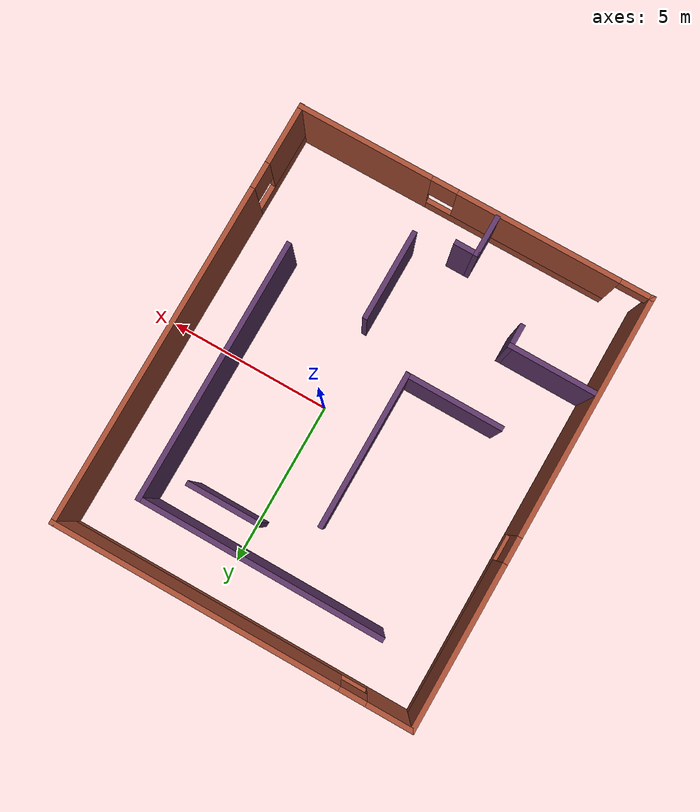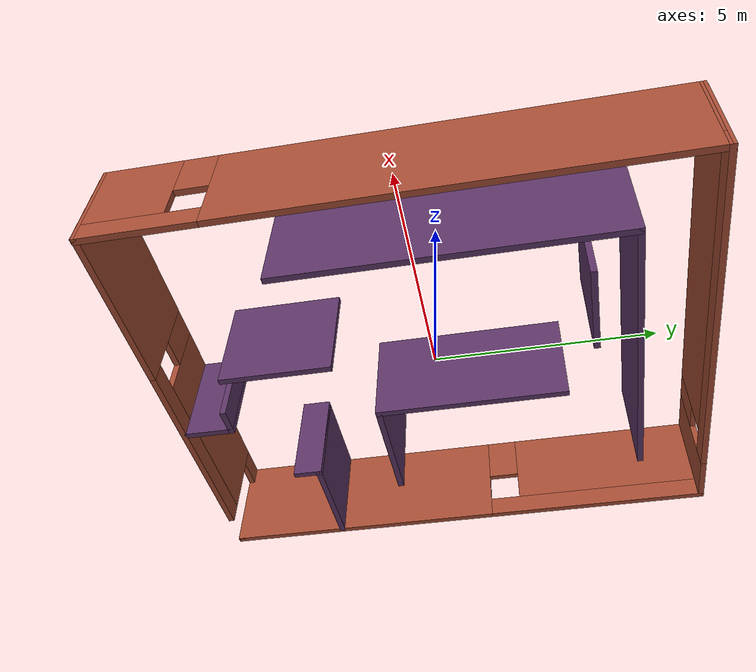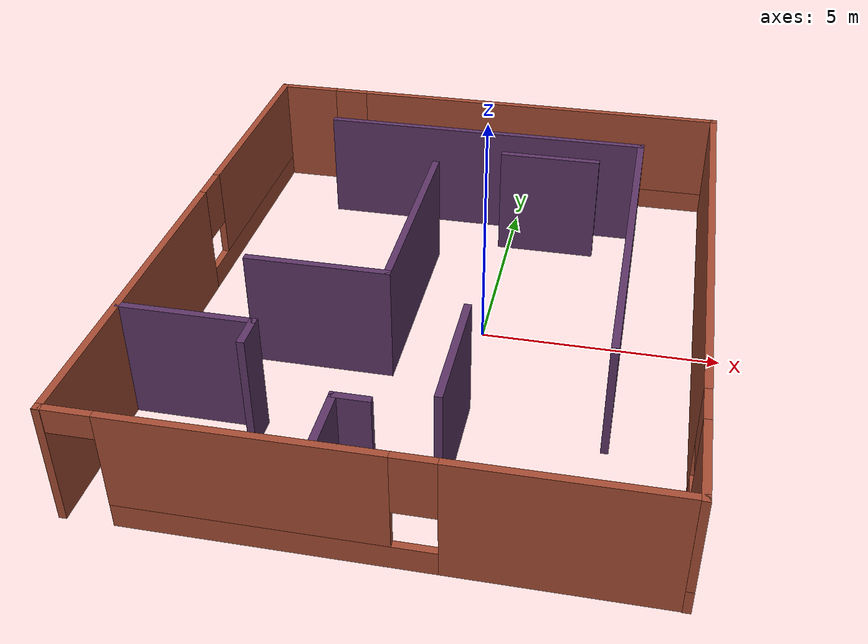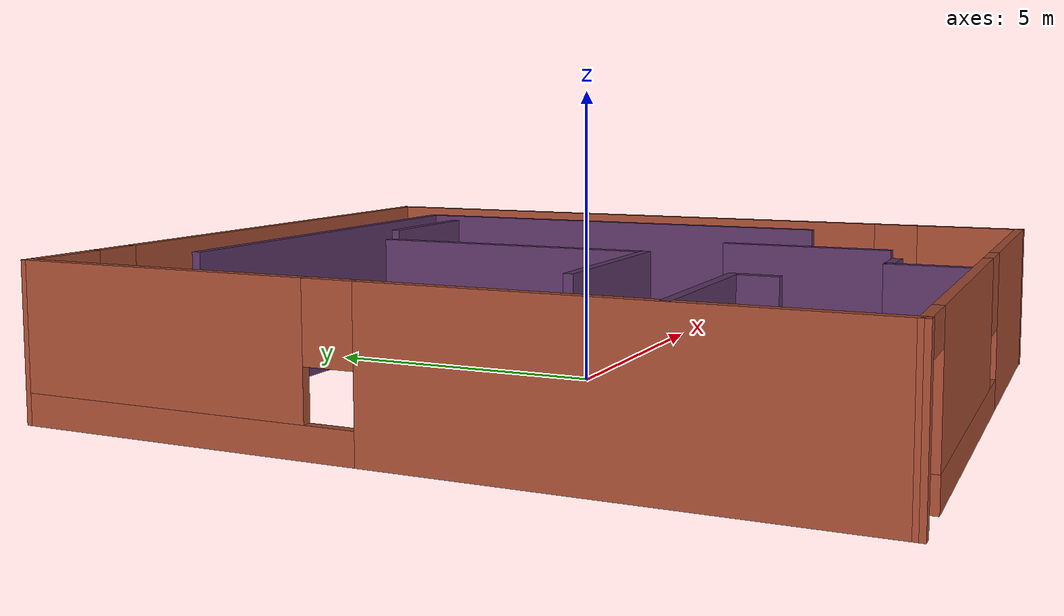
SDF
<?xml version='1.0'?>
<sdf version='1.7'>
  <model name='maze'>
    <pose>-0.910264 -0.210182 0 0 -0 0</pose>
    <link name='Wall_1'>
      <pose>-0.015736 -6.50732 0 0 -0 -3.13597</pose>
      <visual name='Wall_1_Visual_0'>
        <pose>-3.41573 0 1.25 0 -0 0</pose>
        <geometry>
          <box>
            <size>4.16472 0.15 2.5</size>
          </box>
        </geometry>
        <material>
          <script>
            <uri>file://media/materials/scripts/gazebo.material</uri>
            <name>Gazebo/Bricks</name>
          </script>
          <ambient>1 1 1 1</ambient>
        </material>
        <meta>
          <layer>0</layer>
        </meta>
      </visual>
      <collision name='Wall_1_Collision_0'>
        <geometry>
          <box>
            <size>4.16472 0.15 2.5</size>
          </box>
        </geometry>
        <pose>-3.41573 0 1.25 0 -0 0</pose>
      </collision>
      <visual name='Wall_1_Visual_1'>
        <pose>5.42902 0 1.25 0 -0 0</pose>
        <geometry>
          <box>
            <size>0.138125 0.15 2.5</size>
          </box>
        </geometry>
        <material>
          <script>
            <uri>file://media/materials/scripts/gazebo.material</uri>
            <name>Gazebo/Bricks</name>
          </script>
          <ambient>1 1 1 1</ambient>
        </material>
        <meta>
          <layer>0</layer>
        </meta>
      </visual>
      <collision name='Wall_1_Collision_1'>
        <geometry>
          <box>
            <size>0.138125 0.15 2.5</size>
          </box>
        </geometry>
        <pose>5.42902 0 1.25 0 -0 0</pose>
      </collision>
      <visual name='Wall_1_Visual_2'>
        <pose>1.5633 0 0.25 0 -0 0</pose>
        <geometry>
          <box>
            <size>5.79333 0.15 0.5</size>
          </box>
        </geometry>
        <material>
          <script>
            <uri>file://media/materials/scripts/gazebo.material</uri>
            <name>Gazebo/Bricks</name>
          </script>
          <ambient>1 1 1 1</ambient>
        </material>
        <meta>
          <layer>0</layer>
        </meta>
      </visual>
      <collision name='Wall_1_Collision_2'>
        <geometry>
          <box>
            <size>5.79333 0.15 0.5</size>
          </box>
        </geometry>
        <pose>1.5633 0 0.25 0 -0 0</pose>
      </collision>
      <visual name='Wall_1_Visual_3'>
        <pose>1.9633 0 1.5 0 -0 0</pose>
        <geometry>
          <box>
            <size>4.99333 0.15 2</size>
          </box>
        </geometry>
        <material>
          <script>
            <uri>file://media/materials/scripts/gazebo.material</uri>
            <name>Gazebo/Bricks</name>
          </script>
          <ambient>1 1 1 1</ambient>
        </material>
        <meta>
          <layer>0</layer>
        </meta>
      </visual>
      <collision name='Wall_1_Collision_3'>
        <geometry>
          <box>
            <size>4.99333 0.15 2</size>
          </box>
        </geometry>
        <pose>1.9633 0 1.5 0 -0 0</pose>
      </collision>
      <visual name='Wall_1_Visual_4'>
        <pose>-0.933367 0 1.9 0 -0 0</pose>
        <geometry>
          <box>
            <size>0.8 0.15 1.2</size>
          </box>
        </geometry>
        <material>
          <script>
            <uri>file://media/materials/scripts/gazebo.material</uri>
            <name>Gazebo/Bricks</name>
          </script>
          <ambient>1 1 1 1</ambient>
        </material>
        <meta>
          <layer>0</layer>
        </meta>
      </visual>
      <collision name='Wall_1_Collision_4'>
        <geometry>
          <box>
            <size>0.8 0.15 1.2</size>
          </box>
        </geometry>
        <pose>-0.933367 0 1.9 0 -0 0</pose>
      </collision>
      <visual name='Wall_1_Visual_5'>
        <pose>4.90996 0 2.25 0 -0 0</pose>
        <geometry>
          <box>
            <size>0.9 0.15 0.5</size>
          </box>
        </geometry>
        <material>
          <script>
            <uri>file://media/materials/scripts/gazebo.material</uri>
            <name>Gazebo/Bricks</name>
          </script>
          <ambient>1 1 1 1</ambient>
        </material>
        <meta>
          <layer>0</layer>
        </meta>
      </visual>
      <collision name='Wall_1_Collision_5'>
        <geometry>
          <box>
            <size>0.9 0.15 0.5</size>
          </box>
        </geometry>
        <pose>4.90996 0 2.25 0 -0 0</pose>
      </collision>
    </link>
    <link name='Wall_18'>
      <collision name='Wall_18_Collision'>
        <geometry>
          <box>
            <size>2.75 0.15 2.5</size>
          </box>
        </geometry>
        <pose>0 0 1.25 0 -0 0</pose>
      </collision>
      <visual name='Wall_18_Visual'>
        <pose>0 0 1.25 0 -0 0</pose>
        <geometry>
          <box>
            <size>2.75 0.15 2.5</size>
          </box>
        </geometry>
        <material>
          <script>
            <uri>file://media/materials/scripts/gazebo.material</uri>
            <name>Gazebo/Grey</name>
          </script>
          <ambient>0.360784 0.207843 0.4 1</ambient>
        </material>
        <meta>
          <layer>0</layer>
        </meta>
      </visual>
      <pose>-4.06423 -3.53337 0 0 -0 0</pose>
    </link>
    <link name='Wall_19'>
      <collision name='Wall_19_Collision'>
        <geometry>
          <box>
            <size>0.75 0.15 2.5</size>
          </box>
        </geometry>
        <pose>0 0 1.25 0 -0 0</pose>
      </collision>
      <visual name='Wall_19_Visual'>
        <pose>0 0 1.25 0 -0 0</pose>
        <geometry>
          <box>
            <size>0.75 0.15 2.5</size>
          </box>
        </geometry>
        <material>
          <script>
            <uri>file://media/materials/scripts/gazebo.material</uri>
            <name>Gazebo/Grey</name>
          </script>
          <ambient>0.360784 0.207843 0.4 1</ambient>
        </material>
        <meta>
          <layer>0</layer>
        </meta>
      </visual>
      <pose>-2.76423 -3.83337 0 0 -0 -1.5708</pose>
    </link>
    <link name='Wall_2'>
      <pose>-5.42275 -0.030618 0 0 -0 1.56834</pose>
      <visual name='Wall_2_Visual_0'>
        <pose>-2.88442 0 1.25 0 -0 0</pose>
        <geometry>
          <box>
            <size>7.41559 0.15 2.5</size>
          </box>
        </geometry>
        <material>
          <script>
            <uri>file://media/materials/scripts/gazebo.material</uri>
            <name>Gazebo/Bricks</name>
          </script>
          <ambient>1 1 1 1</ambient>
        </material>
        <meta>
          <layer>0</layer>
        </meta>
      </visual>
      <collision name='Wall_2_Collision_0'>
        <geometry>
          <box>
            <size>7.41559 0.15 2.5</size>
          </box>
        </geometry>
        <pose>-2.88442 0 1.25 0 -0 0</pose>
      </collision>
      <visual name='Wall_2_Visual_1'>
        <pose>3.7078 0 0.25 0 -0 0</pose>
        <geometry>
          <box>
            <size>5.76885 0.15 0.5</size>
          </box>
        </geometry>
        <material>
          <script>
            <uri>file://media/materials/scripts/gazebo.material</uri>
            <name>Gazebo/Bricks</name>
          </script>
          <ambient>1 1 1 1</ambient>
        </material>
        <meta>
          <layer>0</layer>
        </meta>
      </visual>
      <collision name='Wall_2_Collision_1'>
        <geometry>
          <box>
            <size>5.76885 0.15 0.5</size>
          </box>
        </geometry>
        <pose>3.7078 0 0.25 0 -0 0</pose>
      </collision>
      <visual name='Wall_2_Visual_2'>
        <pose>4.1078 0 1.5 0 -0 0</pose>
        <geometry>
          <box>
            <size>4.96885 0.15 2</size>
          </box>
        </geometry>
        <material>
          <script>
            <uri>file://media/materials/scripts/gazebo.material</uri>
            <name>Gazebo/Bricks</name>
          </script>
          <ambient>1 1 1 1</ambient>
        </material>
        <meta>
          <layer>0</layer>
        </meta>
      </visual>
      <collision name='Wall_2_Collision_2'>
        <geometry>
          <box>
            <size>4.96885 0.15 2</size>
          </box>
        </geometry>
        <pose>4.1078 0 1.5 0 -0 0</pose>
      </collision>
      <visual name='Wall_2_Visual_3'>
        <pose>1.22337 0 1.9 0 -0 0</pose>
        <geometry>
          <box>
            <size>0.8 0.15 1.2</size>
          </box>
        </geometry>
        <material>
          <script>
            <uri>file://media/materials/scripts/gazebo.material</uri>
            <name>Gazebo/Bricks</name>
          </script>
          <ambient>1 1 1 1</ambient>
        </material>
        <meta>
          <layer>0</layer>
        </meta>
      </visual>
      <collision name='Wall_2_Collision_3'>
        <geometry>
          <box>
            <size>0.8 0.15 1.2</size>
          </box>
        </geometry>
        <pose>1.22337 0 1.9 0 -0 0</pose>
      </collision>
    </link>
    <link name='Wall_21'>
      <collision name='Wall_21_Collision'>
        <geometry>
          <box>
            <size>1.28004 0.15 2.5</size>
          </box>
        </geometry>
        <pose>0 0 1.25 0 -0 0</pose>
      </collision>
      <visual name='Wall_21_Visual'>
        <pose>0 0 1.25 0 -0 0</pose>
        <geometry>
          <box>
            <size>1.28004 0.15 2.5</size>
          </box>
        </geometry>
        <material>
          <script>
            <uri>file://media/materials/scripts/gazebo.material</uri>
            <name>Gazebo/Grey</name>
          </script>
          <ambient>0.360784 0.207843 0.4 1</ambient>
        </material>
        <meta>
          <layer>0</layer>
        </meta>
      </visual>
      <pose>-0.745693 -5.83385 0 0 -0 1.5708</pose>
    </link>
    <link name='Wall_25'>
      <collision name='Wall_25_Collision'>
        <geometry>
          <box>
            <size>7.5 0.15 2.5</size>
          </box>
        </geometry>
        <pose>0 0 1.25 0 -0 0</pose>
      </collision>
      <visual name='Wall_25_Visual'>
        <pose>0 0 1.25 0 -0 0</pose>
        <geometry>
          <box>
            <size>7.5 0.15 2.5</size>
          </box>
        </geometry>
        <material>
          <script>
            <uri>file://media/materials/scripts/gazebo.material</uri>
            <name>Gazebo/Grey</name>
          </script>
          <ambient>0.360784 0.207843 0.4 1</ambient>
        </material>
        <meta>
          <layer>0</layer>
        </meta>
      </visual>
      <pose>0.115596 4.87894 0 0 -0 0</pose>
    </link>
    <link name='Wall_26'>
      <collision name='Wall_26_Collision'>
        <geometry>
          <box>
            <size>8 0.15 2.5</size>
          </box>
        </geometry>
        <pose>0 0 1.25 0 -0 0</pose>
      </collision>
      <visual name='Wall_26_Visual'>
        <pose>0 0 1.25 0 -0 0</pose>
        <geometry>
          <box>
            <size>8 0.15 2.5</size>
          </box>
        </geometry>
        <material>
          <script>
            <uri>file://media/materials/scripts/gazebo.material</uri>
            <name>Gazebo/Grey</name>
          </script>
          <ambient>0.360784 0.207843 0.4 1</ambient>
        </material>
        <meta>
          <layer>0</layer>
        </meta>
      </visual>
      <pose>3.7906 0.95394 0 0 -0 -1.5708</pose>
    </link>
    <link name='Wall_3'>
      <pose>0.016077 6.53047 0 0 -0 0.003188</pose>
      <visual name='Wall_3_Visual_0'>
        <pose>-4.77311 0 1.25 0 -0 0</pose>
        <geometry>
          <box>
            <size>1.44952 0.15 2.5</size>
          </box>
        </geometry>
        <material>
          <script>
            <uri>file://media/materials/scripts/gazebo.material</uri>
            <name>Gazebo/Bricks</name>
          </script>
          <ambient>1 1 1 1</ambient>
        </material>
        <meta>
          <layer>0</layer>
        </meta>
      </visual>
      <collision name='Wall_3_Collision_0'>
        <geometry>
          <box>
            <size>1.44952 0.15 2.5</size>
          </box>
        </geometry>
        <pose>-4.77311 0 1.25 0 -0 0</pose>
      </collision>
      <visual name='Wall_3_Visual_1'>
        <pose>0.724758 0 0.25 0 -0 0</pose>
        <geometry>
          <box>
            <size>9.54622 0.15 0.5</size>
          </box>
        </geometry>
        <material>
          <script>
            <uri>file://media/materials/scripts/gazebo.material</uri>
            <name>Gazebo/Bricks</name>
          </script>
          <ambient>1 1 1 1</ambient>
        </material>
        <meta>
          <layer>0</layer>
        </meta>
      </visual>
      <collision name='Wall_3_Collision_1'>
        <geometry>
          <box>
            <size>9.54622 0.15 0.5</size>
          </box>
        </geometry>
        <pose>0.724758 0 0.25 0 -0 0</pose>
      </collision>
      <visual name='Wall_3_Visual_2'>
        <pose>1.12476 0 1.5 0 -0 0</pose>
        <geometry>
          <box>
            <size>8.74622 0.15 2</size>
          </box>
        </geometry>
        <material>
          <script>
            <uri>file://media/materials/scripts/gazebo.material</uri>
            <name>Gazebo/Bricks</name>
          </script>
          <ambient>1 1 1 1</ambient>
        </material>
        <meta>
          <layer>0</layer>
        </meta>
      </visual>
      <collision name='Wall_3_Collision_2'>
        <geometry>
          <box>
            <size>8.74622 0.15 2</size>
          </box>
        </geometry>
        <pose>1.12476 0 1.5 0 -0 0</pose>
      </collision>
      <visual name='Wall_3_Visual_3'>
        <pose>-3.64835 0 1.9 0 -0 0</pose>
        <geometry>
          <box>
            <size>0.8 0.15 1.2</size>
          </box>
        </geometry>
        <material>
          <script>
            <uri>file://media/materials/scripts/gazebo.material</uri>
            <name>Gazebo/Bricks</name>
          </script>
          <ambient>1 1 1 1</ambient>
        </material>
        <meta>
          <layer>0</layer>
        </meta>
      </visual>
      <collision name='Wall_3_Collision_3'>
        <geometry>
          <box>
            <size>0.8 0.15 1.2</size>
          </box>
        </geometry>
        <pose>-3.64835 0 1.9 0 -0 0</pose>
      </collision>
    </link>
    <link name='Wall_31'>
      <collision name='Wall_31_Collision'>
        <geometry>
          <box>
            <size>3 0.15 2.5</size>
          </box>
        </geometry>
        <pose>0 0 1.25 0 -0 0</pose>
      </collision>
      <visual name='Wall_31_Visual'>
        <pose>0 0 1.25 0 -0 0</pose>
        <geometry>
          <box>
            <size>3 0.15 2.5</size>
          </box>
        </geometry>
        <material>
          <script>
            <uri>file://media/materials/scripts/gazebo.material</uri>
            <name>Gazebo/Grey</name>
          </script>
          <ambient>0.360784 0.207843 0.4 1</ambient>
        </material>
        <meta>
          <layer>0</layer>
        </meta>
      </visual>
      <pose>-2.16499 -1.48383 0 0 -0 0</pose>
    </link>
    <link name='Wall_32'>
      <collision name='Wall_32_Collision'>
        <geometry>
          <box>
            <size>4.75 0.15 2.5</size>
          </box>
        </geometry>
        <pose>0 0 1.25 0 -0 0</pose>
      </collision>
      <visual name='Wall_32_Visual'>
        <pose>0 0 1.25 0 -0 0</pose>
        <geometry>
          <box>
            <size>4.75 0.15 2.5</size>
          </box>
        </geometry>
        <material>
          <script>
            <uri>file://media/materials/scripts/gazebo.material</uri>
            <name>Gazebo/Grey</name>
          </script>
          <ambient>0.360784 0.207843 0.4 1</ambient>
        </material>
        <meta>
          <layer>0</layer>
        </meta>
      </visual>
      <pose>-0.739994 0.816173 0 0 -0 1.5708</pose>
    </link>
    <link name='Wall_37'>
      <collision name='Wall_37_Collision'>
        <geometry>
          <box>
            <size>2.25 0.15 2.5</size>
          </box>
        </geometry>
        <pose>0 0 1.25 0 -0 0</pose>
      </collision>
      <visual name='Wall_37_Visual'>
        <pose>0 0 1.25 0 -0 0</pose>
        <geometry>
          <box>
            <size>2.25 0.15 2.5</size>
          </box>
        </geometry>
        <material>
          <script>
            <uri>file://media/materials/scripts/gazebo.material</uri>
            <name>Gazebo/Grey</name>
          </script>
          <ambient>0.360784 0.207843 0.4 1</ambient>
        </material>
        <meta>
          <layer>0</layer>
        </meta>
      </visual>
      <pose>1.78395 3.90005 0 0 -0 3.14159</pose>
    </link>
    <link name='Wall_39'>
      <collision name='Wall_39_Collision'>
        <geometry>
          <box>
            <size>2.75 0.15 2.5</size>
          </box>
        </geometry>
        <pose>0 0 1.25 0 -0 0</pose>
      </collision>
      <visual name='Wall_39_Visual'>
        <pose>0 0 1.25 0 -0 0</pose>
        <geometry>
          <box>
            <size>2.75 0.15 2.5</size>
          </box>
        </geometry>
        <material>
          <script>
            <uri>file://media/materials/scripts/gazebo.material</uri>
            <name>Gazebo/Grey</name>
          </script>
          <ambient>0.360784 0.207843 0.4 1</ambient>
        </material>
        <meta>
          <layer>0</layer>
        </meta>
      </visual>
      <pose>0.998541 -3.60976 0 0 -0 -1.5708</pose>
    </link>
    <link name='Wall_4'>
      <pose>5.42309 0.030473 0 0 -0 -1.57323</pose>
      <visual name='Wall_4_Visual_0'>
        <pose>-1.35288 0 1.25 0 -0 0</pose>
        <geometry>
          <box>
            <size>10.4789 0.15 2.5</size>
          </box>
        </geometry>
        <material>
          <script>
            <uri>file://media/materials/scripts/gazebo.material</uri>
            <name>Gazebo/Bricks</name>
          </script>
          <ambient>1 1 1 1</ambient>
        </material>
        <meta>
          <layer>0</layer>
        </meta>
      </visual>
      <collision name='Wall_4_Collision_0'>
        <geometry>
          <box>
            <size>10.4789 0.15 2.5</size>
          </box>
        </geometry>
        <pose>-1.35288 0 1.25 0 -0 0</pose>
      </collision>
      <visual name='Wall_4_Visual_1'>
        <pose>5.23943 0 0.25 0 -0 0</pose>
        <geometry>
          <box>
            <size>2.70577 0.15 0.5</size>
          </box>
        </geometry>
        <material>
          <script>
            <uri>file://media/materials/scripts/gazebo.material</uri>
            <name>Gazebo/Bricks</name>
          </script>
          <ambient>1 1 1 1</ambient>
        </material>
        <meta>
          <layer>0</layer>
        </meta>
      </visual>
      <collision name='Wall_4_Collision_1'>
        <geometry>
          <box>
            <size>2.70577 0.15 0.5</size>
          </box>
        </geometry>
        <pose>5.23943 0 0.25 0 -0 0</pose>
      </collision>
      <visual name='Wall_4_Visual_2'>
        <pose>5.63943 0 1.5 0 -0 0</pose>
        <geometry>
          <box>
            <size>1.90577 0.15 2</size>
          </box>
        </geometry>
        <material>
          <script>
            <uri>file://media/materials/scripts/gazebo.material</uri>
            <name>Gazebo/Bricks</name>
          </script>
          <ambient>1 1 1 1</ambient>
        </material>
        <meta>
          <layer>0</layer>
        </meta>
      </visual>
      <collision name='Wall_4_Collision_2'>
        <geometry>
          <box>
            <size>1.90577 0.15 2</size>
          </box>
        </geometry>
        <pose>5.63943 0 1.5 0 -0 0</pose>
      </collision>
      <visual name='Wall_4_Visual_3'>
        <pose>4.28654 0 1.9 0 -0 0</pose>
        <geometry>
          <box>
            <size>0.8 0.15 1.2</size>
          </box>
        </geometry>
        <material>
          <script>
            <uri>file://media/materials/scripts/gazebo.material</uri>
            <name>Gazebo/Bricks</name>
          </script>
          <ambient>1 1 1 1</ambient>
        </material>
        <meta>
          <layer>0</layer>
        </meta>
      </visual>
      <collision name='Wall_4_Collision_3'>
        <geometry>
          <box>
            <size>0.8 0.15 1.2</size>
          </box>
        </geometry>
        <pose>4.28654 0 1.9 0 -0 0</pose>
      </collision>
    </link>
    <link name='Wall_41'>
      <collision name='Wall_41_Collision'>
        <geometry>
          <box>
            <size>0.75 0.15 2.5</size>
          </box>
        </geometry>
        <pose>0 0 1.25 0 -0 0</pose>
      </collision>
      <visual name='Wall_41_Visual'>
        <pose>0 0 1.25 0 -0 0</pose>
        <geometry>
          <box>
            <size>0.75 0.15 2.5</size>
          </box>
        </geometry>
        <material>
          <script>
            <uri>file://media/materials/scripts/gazebo.material</uri>
            <name>Gazebo/Grey</name>
          </script>
          <ambient>0.360784 0.207843 0.4 1</ambient>
        </material>
        <meta>
          <layer>0</layer>
        </meta>
      </visual>
      <pose>-0.445693 -5.26885 0 0 -0 0</pose>
    </link>
    <static>1</static>
  </model>
</sdf>
